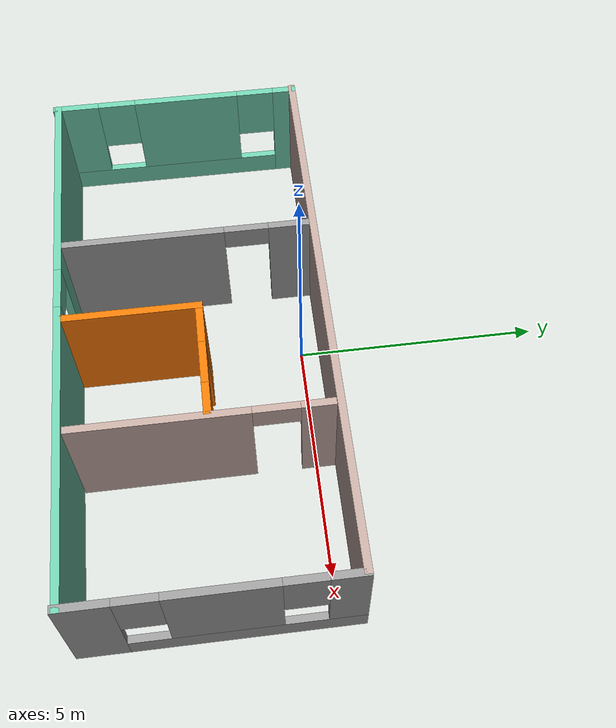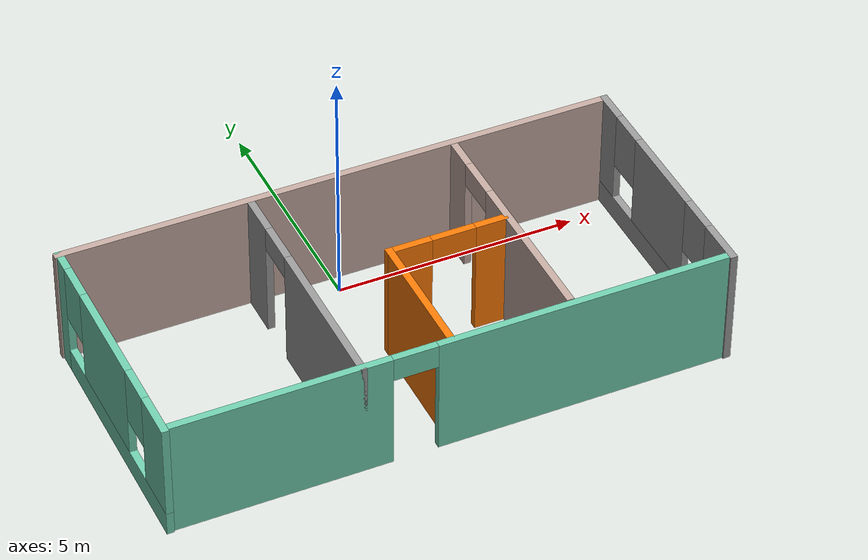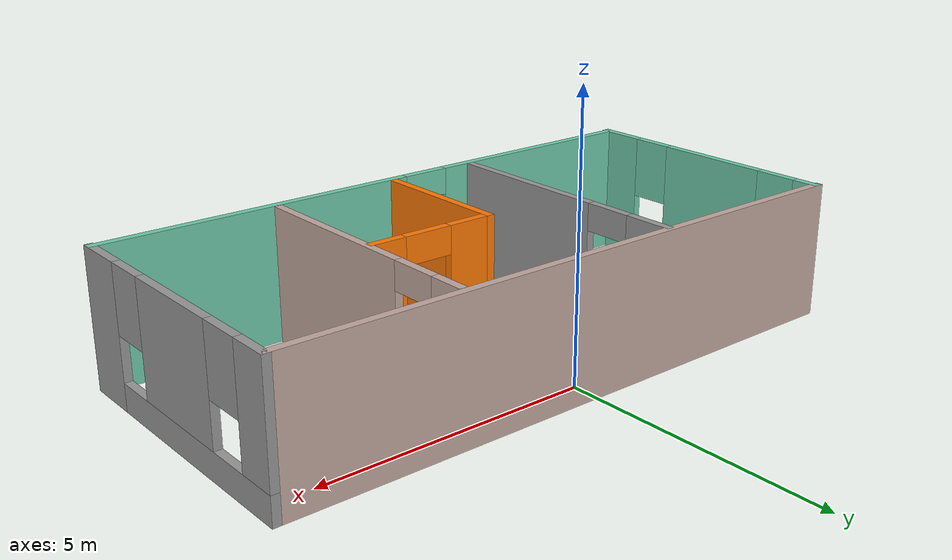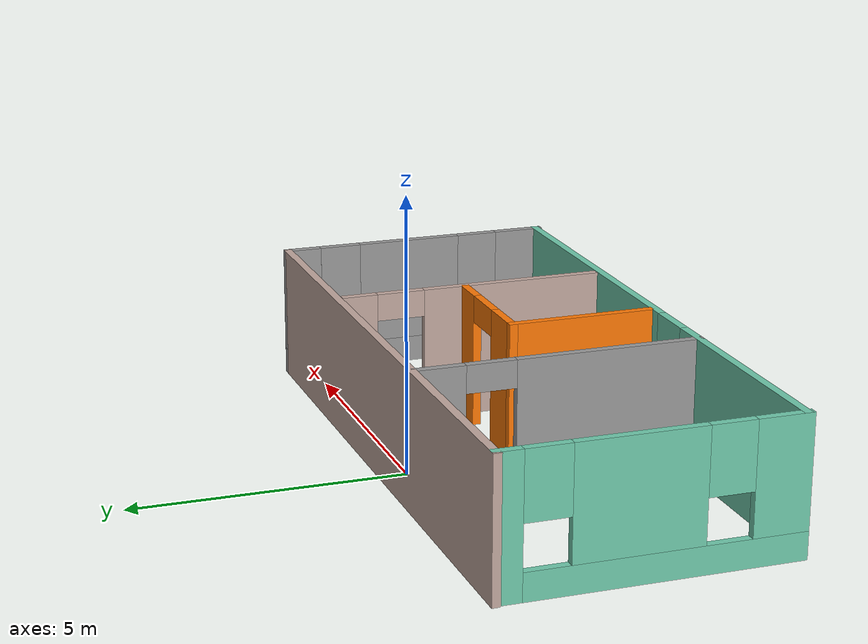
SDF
<?xml version='1.0'?>
<sdf version='1.6'>
  <model name='flat'>
    <pose frame=''>0.202888 -2.15418 0 0 -0 0</pose>
    <link name='Wall_0'>
      <pose frame=''>0.01749 -2.56749 0 0 -0 0</pose>
      <visual name='Wall_0_Visual_0'>
        <pose frame=''>-3.4975 0 1.25 0 -0 0</pose>
        <geometry>
          <box>
            <size>4.505 0.15 2.5</size>
          </box>
        </geometry>
        <material>
          <script>
            <uri>file://media/materials/scripts/gazebo.material</uri>
            <name>Gazebo/Grey</name>
          </script>
          <ambient>0.435294 0.796078 0.67451 1</ambient>
        </material>
        <meta>
          <layer>0</layer>
        </meta>
      </visual>
      <collision name='Wall_0_Collision_0'>
        <geometry>
          <box>
            <size>4.505 0.15 2.5</size>
          </box>
        </geometry>
        <pose frame=''>-3.4975 0 1.25 0 -0 0</pose>
      </collision>
      <visual name='Wall_0_Visual_1'>
        <pose frame=''>2.7025 0 1.25 0 -0 0</pose>
        <geometry>
          <box>
            <size>6.095 0.15 2.5</size>
          </box>
        </geometry>
        <material>
          <script>
            <uri>file://media/materials/scripts/gazebo.material</uri>
            <name>Gazebo/Grey</name>
          </script>
          <ambient>0.435294 0.796078 0.67451 1</ambient>
        </material>
        <meta>
          <layer>0</layer>
        </meta>
      </visual>
      <collision name='Wall_0_Collision_1'>
        <geometry>
          <box>
            <size>6.095 0.15 2.5</size>
          </box>
        </geometry>
        <pose frame=''>2.7025 0 1.25 0 -0 0</pose>
      </collision>
      <visual name='Wall_0_Visual_2'>
        <pose frame=''>-0.795 0 2.25 0 -0 0</pose>
        <geometry>
          <box>
            <size>0.9 0.15 0.5</size>
          </box>
        </geometry>
        <material>
          <script>
            <uri>file://media/materials/scripts/gazebo.material</uri>
            <name>Gazebo/Grey</name>
          </script>
          <ambient>0.435294 0.796078 0.67451 1</ambient>
        </material>
        <meta>
          <layer>0</layer>
        </meta>
      </visual>
      <collision name='Wall_0_Collision_2'>
        <geometry>
          <box>
            <size>0.9 0.15 0.5</size>
          </box>
        </geometry>
        <pose frame=''>-0.795 0 2.25 0 -0 0</pose>
      </collision>
    </link>
    <link name='Wall_1'>
      <pose frame=''>5.69249 0 0 0 -0 1.5708</pose>
      <visual name='Wall_1_Visual_0'>
        <pose frame=''>-2.1766 0 1.25 0 -0 0</pose>
        <geometry>
          <box>
            <size>1.00175 0.15 2.5</size>
          </box>
        </geometry>
        <material>
          <script>
            <uri>file://media/materials/scripts/gazebo.material</uri>
            <name>Gazebo/Grey</name>
          </script>
          <ambient>1 1 1 1</ambient>
        </material>
        <meta>
          <layer>0</layer>
        </meta>
      </visual>
      <collision name='Wall_1_Collision_0'>
        <geometry>
          <box>
            <size>1.00175 0.15 2.5</size>
          </box>
        </geometry>
        <pose frame=''>-2.1766 0 1.25 0 -0 0</pose>
      </collision>
      <visual name='Wall_1_Visual_1'>
        <pose frame=''>0.500875 0 0.25 0 -0 0</pose>
        <geometry>
          <box>
            <size>4.35319 0.15 0.5</size>
          </box>
        </geometry>
        <material>
          <script>
            <uri>file://media/materials/scripts/gazebo.material</uri>
            <name>Gazebo/Grey</name>
          </script>
          <ambient>1 1 1 1</ambient>
        </material>
        <meta>
          <layer>0</layer>
        </meta>
      </visual>
      <collision name='Wall_1_Collision_1'>
        <geometry>
          <box>
            <size>4.35319 0.15 0.5</size>
          </box>
        </geometry>
        <pose frame=''>0.500875 0 0.25 0 -0 0</pose>
      </collision>
      <visual name='Wall_1_Visual_2'>
        <pose frame=''>0.142881 0 1.5 0 -0 0</pose>
        <geometry>
          <box>
            <size>2.0372 0.15 2</size>
          </box>
        </geometry>
        <material>
          <script>
            <uri>file://media/materials/scripts/gazebo.material</uri>
            <name>Gazebo/Grey</name>
          </script>
          <ambient>1 1 1 1</ambient>
        </material>
        <meta>
          <layer>0</layer>
        </meta>
      </visual>
      <collision name='Wall_1_Collision_2'>
        <geometry>
          <box>
            <size>2.0372 0.15 2</size>
          </box>
        </geometry>
        <pose frame=''>0.142881 0 1.5 0 -0 0</pose>
      </collision>
      <visual name='Wall_1_Visual_3'>
        <pose frame=''>2.31948 0 1.5 0 -0 0</pose>
        <geometry>
          <box>
            <size>0.715988 0.15 2</size>
          </box>
        </geometry>
        <material>
          <script>
            <uri>file://media/materials/scripts/gazebo.material</uri>
            <name>Gazebo/Grey</name>
          </script>
          <ambient>1 1 1 1</ambient>
        </material>
        <meta>
          <layer>0</layer>
        </meta>
      </visual>
      <collision name='Wall_1_Collision_3'>
        <geometry>
          <box>
            <size>0.715988 0.15 2</size>
          </box>
        </geometry>
        <pose frame=''>2.31948 0 1.5 0 -0 0</pose>
      </collision>
      <visual name='Wall_1_Visual_4'>
        <pose frame=''>-1.27572 0 1.9 0 -0 0</pose>
        <geometry>
          <box>
            <size>0.8 0.15 1.2</size>
          </box>
        </geometry>
        <material>
          <script>
            <uri>file://media/materials/scripts/gazebo.material</uri>
            <name>Gazebo/Grey</name>
          </script>
          <ambient>1 1 1 1</ambient>
        </material>
        <meta>
          <layer>0</layer>
        </meta>
      </visual>
      <collision name='Wall_1_Collision_4'>
        <geometry>
          <box>
            <size>0.8 0.15 1.2</size>
          </box>
        </geometry>
        <pose frame=''>-1.27572 0 1.9 0 -0 0</pose>
      </collision>
      <visual name='Wall_1_Visual_5'>
        <pose frame=''>1.56148 0 1.9 0 -0 0</pose>
        <geometry>
          <box>
            <size>0.8 0.15 1.2</size>
          </box>
        </geometry>
        <material>
          <script>
            <uri>file://media/materials/scripts/gazebo.material</uri>
            <name>Gazebo/Grey</name>
          </script>
          <ambient>1 1 1 1</ambient>
        </material>
        <meta>
          <layer>0</layer>
        </meta>
      </visual>
      <collision name='Wall_1_Collision_5'>
        <geometry>
          <box>
            <size>0.8 0.15 1.2</size>
          </box>
        </geometry>
        <pose frame=''>1.56148 0 1.9 0 -0 0</pose>
      </collision>
    </link>
    <link name='Wall_12'>
      <collision name='Wall_12_Collision'>
        <geometry>
          <box>
            <size>2.75 0.15 2.5</size>
          </box>
        </geometry>
        <pose frame=''>0 0 1.25 0 -0 0</pose>
      </collision>
      <visual name='Wall_12_Visual'>
        <pose frame=''>0 0 1.25 0 -0 0</pose>
        <geometry>
          <box>
            <size>2.75 0.15 2.5</size>
          </box>
        </geometry>
        <material>
          <script>
            <uri>file://media/materials/scripts/gazebo.material</uri>
            <name>Gazebo/Grey</name>
          </script>
          <ambient>0.996078 0.47451 0.0196078 1</ambient>
        </material>
        <meta>
          <layer>0</layer>
        </meta>
      </visual>
      <pose frame=''>-0.037888 -1.14582 0 0 0 -1.5708</pose>
    </link>
    <link name='Wall_14'>
      <pose frame=''>1.13711 0.154179 0 0 -0 0</pose>
      <visual name='Wall_14_Visual_0'>
        <pose frame=''>-0.788452 0 1.25 0 -0 0</pose>
        <geometry>
          <box>
            <size>0.923095 0.15 2.5</size>
          </box>
        </geometry>
        <material>
          <script>
            <uri>file://media/materials/scripts/gazebo.material</uri>
            <name>Gazebo/Grey</name>
          </script>
          <ambient>0.996078 0.47451 0.0196078 1</ambient>
        </material>
        <meta>
          <layer>0</layer>
        </meta>
      </visual>
      <collision name='Wall_14_Collision_0'>
        <geometry>
          <box>
            <size>0.923095 0.15 2.5</size>
          </box>
        </geometry>
        <pose frame=''>-0.788452 0 1.25 0 -0 0</pose>
      </collision>
      <visual name='Wall_14_Visual_1'>
        <pose frame=''>0.911548 0 1.25 0 -0 0</pose>
        <geometry>
          <box>
            <size>0.676905 0.15 2.5</size>
          </box>
        </geometry>
        <material>
          <script>
            <uri>file://media/materials/scripts/gazebo.material</uri>
            <name>Gazebo/Grey</name>
          </script>
          <ambient>0.996078 0.47451 0.0196078 1</ambient>
        </material>
        <meta>
          <layer>0</layer>
        </meta>
      </visual>
      <collision name='Wall_14_Collision_1'>
        <geometry>
          <box>
            <size>0.676905 0.15 2.5</size>
          </box>
        </geometry>
        <pose frame=''>0.911548 0 1.25 0 -0 0</pose>
      </collision>
      <visual name='Wall_14_Visual_2'>
        <pose frame=''>0.123095 0 2.25 0 -0 0</pose>
        <geometry>
          <box>
            <size>0.9 0.15 0.5</size>
          </box>
        </geometry>
        <material>
          <script>
            <uri>file://media/materials/scripts/gazebo.material</uri>
            <name>Gazebo/Grey</name>
          </script>
          <ambient>0.996078 0.47451 0.0196078 1</ambient>
        </material>
        <meta>
          <layer>0</layer>
        </meta>
      </visual>
      <collision name='Wall_14_Collision_2'>
        <geometry>
          <box>
            <size>0.9 0.15 0.5</size>
          </box>
        </geometry>
        <pose frame=''>0.123095 0 2.25 0 -0 0</pose>
      </collision>
    </link>
    <link name='Wall_3'>
      <collision name='Wall_3_Collision'>
        <geometry>
          <box>
            <size>11.5 0.15 2.5</size>
          </box>
        </geometry>
        <pose frame=''>0 0 1.25 0 -0 0</pose>
      </collision>
      <visual name='Wall_3_Visual'>
        <pose frame=''>0 0 1.25 0 -0 0</pose>
        <geometry>
          <box>
            <size>11.5 0.15 2.5</size>
          </box>
        </geometry>
        <material>
          <script>
            <uri>file://media/materials/scripts/gazebo.material</uri>
            <name>Gazebo/Grey</name>
          </script>
          <ambient>0.760784 0.662745 0.627451 1</ambient>
        </material>
        <meta>
          <layer>0</layer>
        </meta>
      </visual>
      <pose frame=''>-0.01749 2.60247 0 0 -0 3.14159</pose>
    </link>
    <link name='Wall_4'>
      <pose frame=''>-5.65751 0 0 0 0 -1.5708</pose>
      <visual name='Wall_4_Visual_0'>
        <pose frame=''>-2.42153 0 1.25 0 -0 0</pose>
        <geometry>
          <box>
            <size>0.511873 0.15 2.5</size>
          </box>
        </geometry>
        <material>
          <script>
            <uri>file://media/materials/scripts/gazebo.material</uri>
            <name>Gazebo/Grey</name>
          </script>
          <ambient>0.435294 0.796078 0.67451 1</ambient>
        </material>
        <meta>
          <layer>0</layer>
        </meta>
      </visual>
      <collision name='Wall_4_Collision_0'>
        <geometry>
          <box>
            <size>0.511873 0.15 2.5</size>
          </box>
        </geometry>
        <pose frame=''>-2.42153 0 1.25 0 -0 0</pose>
      </collision>
      <visual name='Wall_4_Visual_1'>
        <pose frame=''>0.255936 0 0.25 0 -0 0</pose>
        <geometry>
          <box>
            <size>4.84307 0.15 0.5</size>
          </box>
        </geometry>
        <material>
          <script>
            <uri>file://media/materials/scripts/gazebo.material</uri>
            <name>Gazebo/Grey</name>
          </script>
          <ambient>0.435294 0.796078 0.67451 1</ambient>
        </material>
        <meta>
          <layer>0</layer>
        </meta>
      </visual>
      <collision name='Wall_4_Collision_1'>
        <geometry>
          <box>
            <size>4.84307 0.15 0.5</size>
          </box>
        </geometry>
        <pose frame=''>0.255936 0 0.25 0 -0 0</pose>
      </collision>
      <visual name='Wall_4_Visual_2'>
        <pose frame=''>-0.234732 0 1.5 0 -0 0</pose>
        <geometry>
          <box>
            <size>2.26173 0.15 2</size>
          </box>
        </geometry>
        <material>
          <script>
            <uri>file://media/materials/scripts/gazebo.material</uri>
            <name>Gazebo/Grey</name>
          </script>
          <ambient>0.435294 0.796078 0.67451 1</ambient>
        </material>
        <meta>
          <layer>0</layer>
        </meta>
      </visual>
      <collision name='Wall_4_Collision_2'>
        <geometry>
          <box>
            <size>2.26173 0.15 2</size>
          </box>
        </geometry>
        <pose frame=''>-0.234732 0 1.5 0 -0 0</pose>
      </collision>
      <visual name='Wall_4_Visual_3'>
        <pose frame=''>2.1868 0 1.5 0 -0 0</pose>
        <geometry>
          <box>
            <size>0.981338 0.15 2</size>
          </box>
        </geometry>
        <material>
          <script>
            <uri>file://media/materials/scripts/gazebo.material</uri>
            <name>Gazebo/Grey</name>
          </script>
          <ambient>0.435294 0.796078 0.67451 1</ambient>
        </material>
        <meta>
          <layer>0</layer>
        </meta>
      </visual>
      <collision name='Wall_4_Collision_3'>
        <geometry>
          <box>
            <size>0.981338 0.15 2</size>
          </box>
        </geometry>
        <pose frame=''>2.1868 0 1.5 0 -0 0</pose>
      </collision>
      <visual name='Wall_4_Visual_4'>
        <pose frame=''>-1.7656 0 1.9 0 -0 0</pose>
        <geometry>
          <box>
            <size>0.8 0.15 1.2</size>
          </box>
        </geometry>
        <material>
          <script>
            <uri>file://media/materials/scripts/gazebo.material</uri>
            <name>Gazebo/Grey</name>
          </script>
          <ambient>0.435294 0.796078 0.67451 1</ambient>
        </material>
        <meta>
          <layer>0</layer>
        </meta>
      </visual>
      <collision name='Wall_4_Collision_4'>
        <geometry>
          <box>
            <size>0.8 0.15 1.2</size>
          </box>
        </geometry>
        <pose frame=''>-1.7656 0 1.9 0 -0 0</pose>
      </collision>
      <visual name='Wall_4_Visual_5'>
        <pose frame=''>1.29613 0 1.9 0 -0 0</pose>
        <geometry>
          <box>
            <size>0.8 0.15 1.2</size>
          </box>
        </geometry>
        <material>
          <script>
            <uri>file://media/materials/scripts/gazebo.material</uri>
            <name>Gazebo/Grey</name>
          </script>
          <ambient>0.435294 0.796078 0.67451 1</ambient>
        </material>
        <meta>
          <layer>0</layer>
        </meta>
      </visual>
      <collision name='Wall_4_Collision_5'>
        <geometry>
          <box>
            <size>0.8 0.15 1.2</size>
          </box>
        </geometry>
        <pose frame=''>1.29613 0 1.9 0 -0 0</pose>
      </collision>
    </link>
    <link name='Wall_6'>
      <pose frame=''>-1.82739 -0.01749 0 0 0 -1.5708</pose>
      <visual name='Wall_6_Visual_0'>
        <pose frame=''>-2.1625 0 1.25 0 -0 0</pose>
        <geometry>
          <box>
            <size>0.925 0.15 2.5</size>
          </box>
        </geometry>
        <material>
          <script>
            <uri>file://media/materials/scripts/gazebo.material</uri>
            <name>Gazebo/Grey</name>
          </script>
          <ambient>1 1 1 1</ambient>
        </material>
        <meta>
          <layer>0</layer>
        </meta>
      </visual>
      <collision name='Wall_6_Collision_0'>
        <geometry>
          <box>
            <size>0.925 0.15 2.5</size>
          </box>
        </geometry>
        <pose frame=''>-2.1625 0 1.25 0 -0 0</pose>
      </collision>
      <visual name='Wall_6_Visual_1'>
        <pose frame=''>0.9125 0 1.25 0 -0 0</pose>
        <geometry>
          <box>
            <size>3.425 0.15 2.5</size>
          </box>
        </geometry>
        <material>
          <script>
            <uri>file://media/materials/scripts/gazebo.material</uri>
            <name>Gazebo/Grey</name>
          </script>
          <ambient>1 1 1 1</ambient>
        </material>
        <meta>
          <layer>0</layer>
        </meta>
      </visual>
      <collision name='Wall_6_Collision_1'>
        <geometry>
          <box>
            <size>3.425 0.15 2.5</size>
          </box>
        </geometry>
        <pose frame=''>0.9125 0 1.25 0 -0 0</pose>
      </collision>
      <visual name='Wall_6_Visual_2'>
        <pose frame=''>-1.25 0 2.25 0 -0 0</pose>
        <geometry>
          <box>
            <size>0.9 0.15 0.5</size>
          </box>
        </geometry>
        <material>
          <script>
            <uri>file://media/materials/scripts/gazebo.material</uri>
            <name>Gazebo/Grey</name>
          </script>
          <ambient>1 1 1 1</ambient>
        </material>
        <meta>
          <layer>0</layer>
        </meta>
      </visual>
      <collision name='Wall_6_Collision_2'>
        <geometry>
          <box>
            <size>0.9 0.15 0.5</size>
          </box>
        </geometry>
        <pose frame=''>-1.25 0 2.25 0 -0 0</pose>
      </collision>
    </link>
    <link name='Wall_9'>
      <pose frame=''>2.40233 0.02249 0 0 0 -1.5708</pose>
      <visual name='Wall_9_Visual_0'>
        <pose frame=''>-2.1675 0 1.25 0 -0 0</pose>
        <geometry>
          <box>
            <size>0.665 0.15 2.5</size>
          </box>
        </geometry>
        <material>
          <script>
            <uri>file://media/materials/scripts/gazebo.material</uri>
            <name>Gazebo/Grey</name>
          </script>
          <ambient>0.760784 0.662745 0.627451 1</ambient>
        </material>
        <meta>
          <layer>0</layer>
        </meta>
      </visual>
      <collision name='Wall_9_Collision_0'>
        <geometry>
          <box>
            <size>0.665 0.15 2.5</size>
          </box>
        </geometry>
        <pose frame=''>-2.1675 0 1.25 0 -0 0</pose>
      </collision>
      <visual name='Wall_9_Visual_1'>
        <pose frame=''>0.7825 0 1.25 0 -0 0</pose>
        <geometry>
          <box>
            <size>3.435 0.15 2.5</size>
          </box>
        </geometry>
        <material>
          <script>
            <uri>file://media/materials/scripts/gazebo.material</uri>
            <name>Gazebo/Grey</name>
          </script>
          <ambient>0.760784 0.662745 0.627451 1</ambient>
        </material>
        <meta>
          <layer>0</layer>
        </meta>
      </visual>
      <collision name='Wall_9_Collision_1'>
        <geometry>
          <box>
            <size>3.435 0.15 2.5</size>
          </box>
        </geometry>
        <pose frame=''>0.7825 0 1.25 0 -0 0</pose>
      </collision>
      <visual name='Wall_9_Visual_2'>
        <pose frame=''>-1.385 0 2.25 0 -0 0</pose>
        <geometry>
          <box>
            <size>0.9 0.15 0.5</size>
          </box>
        </geometry>
        <material>
          <script>
            <uri>file://media/materials/scripts/gazebo.material</uri>
            <name>Gazebo/Grey</name>
          </script>
          <ambient>0.760784 0.662745 0.627451 1</ambient>
        </material>
        <meta>
          <layer>0</layer>
        </meta>
      </visual>
      <collision name='Wall_9_Collision_2'>
        <geometry>
          <box>
            <size>0.9 0.15 0.5</size>
          </box>
        </geometry>
        <pose frame=''>-1.385 0 2.25 0 -0 0</pose>
      </collision>
    </link>
    <static>1</static>
  </model>
</sdf>
